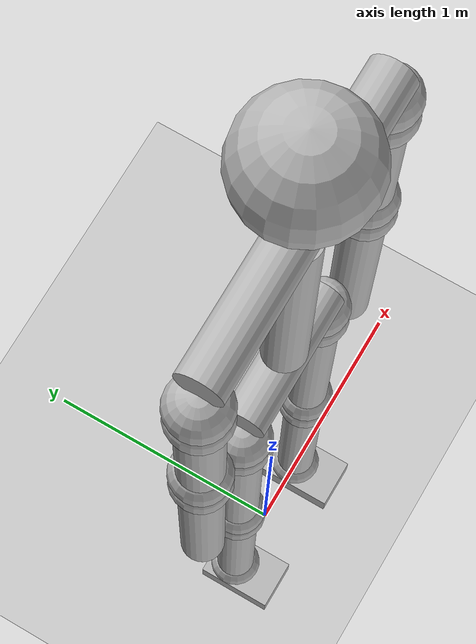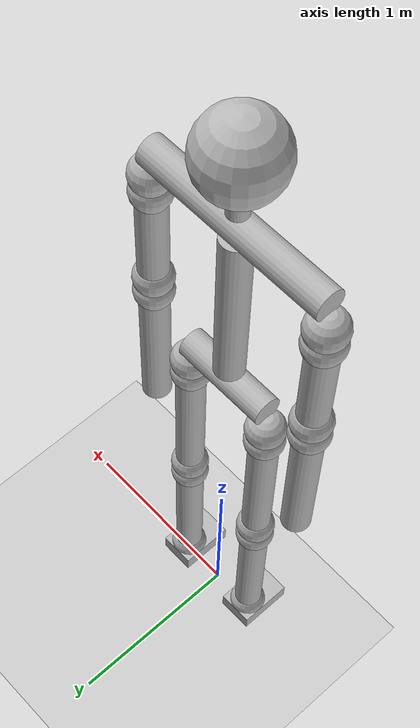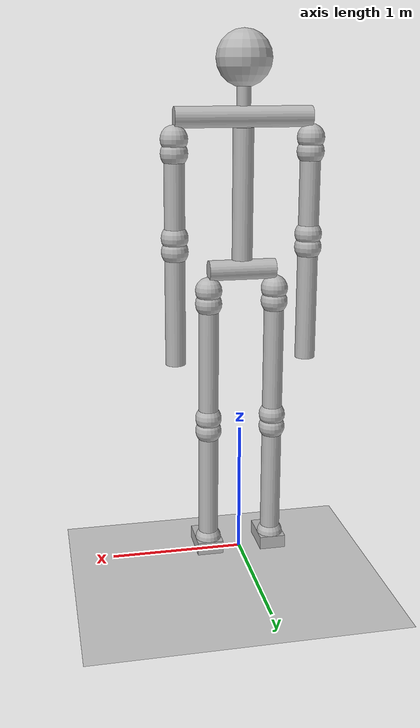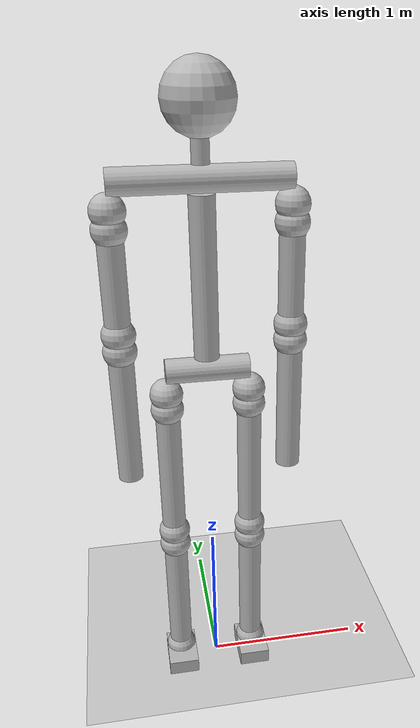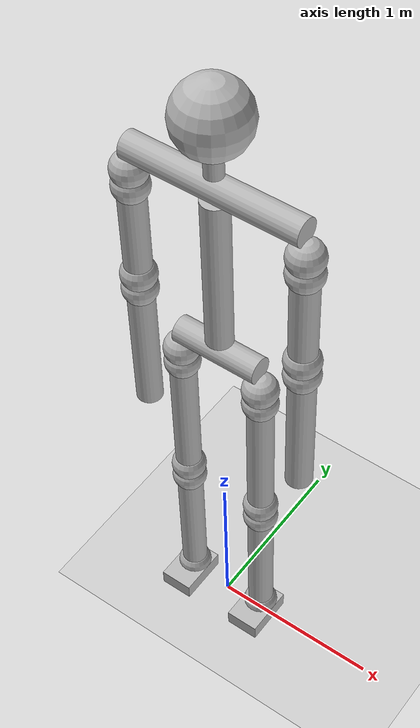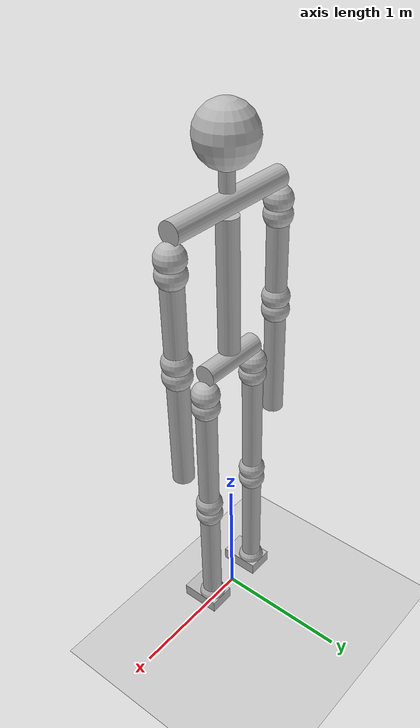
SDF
<?xml version="1.0" ?>
<sdf version="1.4">
     <world name="my_robot_world">
        <include>
            <uri>model://sun</uri>
        </include>
        <include>
            <uri>model://ground_plane</uri>
        </include>
        <include>
            <uri>model://my_robot</uri>
        </include>
     </world>
</sdf>

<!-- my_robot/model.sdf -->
<sdf version='1.4'>
	<model name="my_robot">
		<static>false</static>

    <joint type="fixed" name="joint_78">
      <child>link8</child>
      <parent>link7</parent>
    </joint>

    <joint type="fixed" name="joint_47">
      <child>link7</child>
      <parent>link4</parent>
    </joint>

    <link name='link8'>  <!-- head -->
      <inertial>
        <mass>0.4</mass>
      </inertial>
      <self_collide>1</self_collide>
      <pose>0 0 3.75 0 0 0</pose>
      <collision name='collision'>
        <geometry>
          <sphere>
            <radius>.01</radius>
          </sphere>
        </geometry>
      </collision>

      <visual name='visual'>
        <geometry>
          <sphere>
            <radius>.2</radius>
          </sphere>
        </geometry>
      </visual>
    </link>

    <link name='link7'>  <!-- neck -->
      <inertial>
        <mass>0.01875</mass>
      </inertial>
      <self_collide>1</self_collide>
      <pose>0 0 3.55 0 0 0</pose>
      <collision name='collision'>
        <geometry>
          <cylinder>
            <radius>.01</radius>
            <length>.2</length>
          </cylinder>
        </geometry>
      </collision>

      <visual name='visual'>
        <geometry>
          <cylinder>
            <radius>.05</radius>
            <length>.25</length>
          </cylinder>
        </geometry>
      </visual>
    </link>

    <link name='link6l'>  <!-- left lower arm -->
      <inertial>
        <mass>0.6</mass>
      </inertial>
      <self_collide>1</self_collide>
      <pose>-.5 0 1.95 0 0 0</pose>
      <collision name='collision'>
        <geometry>
          <cylinder>
            <radius>.01</radius>
            <length>.8</length>
          </cylinder>
        </geometry>
      </collision>

      <visual name='visual'>
        <geometry>
          <cylinder>
            <radius>.075</radius>
            <length>.8</length>
          </cylinder>
        </geometry>
      </visual>
    </link>

    <link name='link6r'>  <!-- right lower arm -->
      <inertial>
        <mass>0.6</mass>
      </inertial>
      <self_collide>1</self_collide>
      <pose>.5 0 1.95 0 0 0</pose>
      <collision name='collision'>
        <geometry>
          <cylinder>
            <radius>.01</radius>
            <length>.8</length>
          </cylinder>
        </geometry>
      </collision>

      <visual name='visual'>
        <geometry>
          <cylinder>
            <radius>.075</radius>
            <length>.8</length>
          </cylinder>
        </geometry>
      </visual>
    </link>

    <joint type="fixed" name="joint_link6lballjoint0">
      <child>link6lball0</child>
      <parent>link6l</parent>
    </joint>

    <joint type="fixed" name="joint_link6rballjoint0">
      <child>link6rball0</child>
      <parent>link6r</parent>
    </joint>

    <link name='link6lball0'>
      <inertial>
        <mass>0.1</mass>
      </inertial>
      <pose>-.5 0 2.4 0 0 0</pose>
      <collision name='collision'>
        <geometry>
          <sphere>
            <radius>.01</radius>
          </sphere>
        </geometry>
      </collision>

      <visual name='visual'>
        <geometry>
          <sphere>
            <radius>.1</radius>
          </sphere>
        </geometry>
      </visual>
    </link>

    <link name='link6rball0'>
      <inertial>
        <mass>0.1</mass>
      </inertial>
      <pose>.5 0 2.4 0 0 0</pose>
      <collision name='collision'>
        <geometry>
          <sphere>
            <radius>.01</radius>
          </sphere>
        </geometry>
      </collision>

      <visual name='visual'>
        <geometry>
          <sphere>
            <radius>.1</radius>
          </sphere>
        </geometry>
      </visual>
    </link>

    <joint type="revolute" name="joint_5l6l">
      <child>link6lball0</child>
      <parent>link5lball</parent>
      <axis>
        <xyz>1 0 0 </xyz>
        <limit>
          <lower>-3.14</lower>
          <upper>0</upper>
          <stiffness>25000</stiffness>
          <effort>100</effort>
        </limit>
        <dynamics>
          <friction>0.0001</friction>
        </dynamics>
      </axis>
    </joint>

    <joint type="revolute" name="joint_5r6r">
      <child>link6rball0</child>
      <parent>link5rball</parent>
      <axis>
        <xyz>1 0 0 </xyz>
        <limit>
          <lower>-3.14</lower>
          <upper>0</upper>
          <stiffness>25000</stiffness>
          <effort>100</effort>
        </limit>
        <dynamics>
          <friction>0.0001</friction>
        </dynamics>
      </axis>
    </joint>

    <joint type="fixed" name="joint_link5lballjoint">
      <child>link5lball</child>
      <parent>link5l</parent>
    </joint>

    <joint type="fixed" name="joint_link5rballjoint">
      <child>link5rball</child>
      <parent>link5r</parent>
    </joint>

    <link name='link5lball'>
      <inertial>
        <mass>0.1</mass>
      </inertial>
      <pose>-.5 0 2.5 0 0 0</pose>
      <collision name='collision'>
        <geometry>
          <sphere>
            <radius>.01</radius>
          </sphere>
        </geometry>
      </collision>

      <visual name='visual'>
        <geometry>
          <sphere>
            <radius>.1</radius>
          </sphere>
        </geometry>
      </visual>
    </link>

    <link name='link5rball'>
      <inertial>
        <mass>0.1</mass>
      </inertial>
      <pose>.5 0 2.5 0 0 0</pose>
      <collision name='collision'>
        <geometry>
          <sphere>
            <radius>.01</radius>
          </sphere>
        </geometry>
      </collision>

      <visual name='visual'>
        <geometry>
          <sphere>
            <radius>.1</radius>
          </sphere>
        </geometry>
      </visual>
    </link>

    <link name='link5l'>  <!-- left arm -->
      <inertial>
        <mass>0.375</mass>
      </inertial>
      <self_collide>1</self_collide>
      <pose>-.5 0 2.8 0 0 0</pose>
      <collision name='collision'>
        <geometry>
          <cylinder>
            <radius>.01</radius>
            <length>.5</length>
          </cylinder>
        </geometry>
      </collision>

      <visual name='visual'>
        <geometry>
          <cylinder>
            <radius>.075</radius>
            <length>.5</length>
          </cylinder>
        </geometry>
      </visual>
    </link>

    <link name='link5r'>  <!-- right arm -->
      <inertial>
        <mass>0.375</mass>
      </inertial>
      <self_collide>1</self_collide>
      <pose>.5 0 2.8 0 0 0</pose>
      <collision name='collision'>
        <geometry>
          <cylinder>
            <radius>.01</radius>
            <length>.5</length>
          </cylinder>
        </geometry>
      </collision>

      <visual name='visual'>
        <geometry>
          <cylinder>
            <radius>.075</radius>
            <length>.5</length>
          </cylinder>
        </geometry>
      </visual>
    </link>

    <joint type="fixed" name="joint_link5lballjoint0">
      <child>link5lball0</child>
      <parent>link5l</parent>
    </joint>

    <joint type="fixed" name="joint_link5rballjoint0">
      <child>link5rball0</child>
      <parent>link5r</parent>
    </joint>

    <link name='link5lball0'>
      <inertial>
        <mass>0.1</mass>
      </inertial>
      <pose>-.5 0 3.1 0 0 0</pose>
      <collision name='collision'>
        <geometry>
          <sphere>
            <radius>.01</radius>
          </sphere>
        </geometry>
      </collision>

      <visual name='visual'>
        <geometry>
          <sphere>
            <radius>.1</radius>
          </sphere>
        </geometry>
      </visual>
    </link>

    <link name='link5rball0'>
      <inertial>
        <mass>0.1</mass>
      </inertial>
      <pose>.5 0 3.1 0 0 0</pose>
      <collision name='collision'>
        <geometry>
          <sphere>
            <radius>.01</radius>
          </sphere>
        </geometry>
      </collision>

      <visual name='visual'>
        <geometry>
          <sphere>
            <radius>.1</radius>
          </sphere>
        </geometry>
      </visual>
    </link>

    <joint type="revolute" name="joint_45l">
      <child>link5lball0</child>
      <parent>link4lball</parent>
      <axis>
        <xyz>1 0 0 </xyz>
        <limit>
          <lower>-3.14</lower>
          <upper>0.79</upper>
          <stiffness>25000</stiffness>
          <effort>100</effort>
        </limit>
        <dynamics>
          <friction>0.0001</friction>
        </dynamics>
      </axis>
    </joint>

    <joint type="revolute" name="joint_45r">
      <child>link5rball0</child>
      <parent>link4rball</parent>
      <axis>
        <xyz>1 0 0 </xyz>
        <limit>
          <lower>-3.14</lower>
          <upper>0.79</upper>
          <stiffness>25000</stiffness>
          <effort>100</effort>
        </limit>
        <dynamics>
          <friction>0.0001</friction>
        </dynamics>
      </axis>
    </joint>

    <joint type="fixed" name="joint_34">
      <child>link4</child>
      <parent>link3</parent>
    </joint>

    <link name='link4lball'>
      <inertial>
        <mass>0.1</mass>
      </inertial>
      <pose>-.5 0 3.2 0 0 0</pose>
      <collision name='collision'>
        <geometry>
          <sphere>
            <radius>.01</radius>
          </sphere>
        </geometry>
      </collision>

      <visual name='visual'>
        <geometry>
          <sphere>
            <radius>.1</radius>
          </sphere>
        </geometry>
      </visual>
    </link>

    <link name='link4rball'>
      <inertial>
        <mass>0.1</mass>
      </inertial>
      <pose>.5 0 3.2 0 0 0</pose>
      <collision name='collision'>
        <geometry>
          <sphere>
            <radius>.01</radius>
          </sphere>
        </geometry>
      </collision>

      <visual name='visual'>
        <geometry>
          <sphere>
            <radius>.1</radius>
          </sphere>
        </geometry>
      </visual>
    </link>

    <joint type="fixed" name="joint_link4lballjoint">
      <child>link4lball</child>
      <parent>link4</parent>
    </joint>

    <joint type="fixed" name="joint_link4rballjoint">
      <child>link4rball</child>
      <parent>link4</parent>
    </joint>

    <link name='link4'>  <!-- shoulder -->
      <inertial>
        <mass>0.75</mass>
      </inertial>
      <self_collide>1</self_collide>
      <pose>0 0 3.35 0 1.57079632 0</pose>
      <collision name='collision'>
        <geometry>
          <cylinder>
            <radius>.01</radius>
            <length>1</length>
          </cylinder>
        </geometry>
      </collision>

      <visual name='visual'>
        <geometry>
          <cylinder>
            <radius>.075</radius>
            <length>1</length>
          </cylinder>
        </geometry>
      </visual>
    </link>

    <joint type="fixed" name="joint_03">
      <child>link3</child>
      <parent>link0</parent>
    </joint>

    <link name='link3'>  <!-- trunk -->
      <inertial>
        <mass>0.7125</mass>
      </inertial>
      <self_collide>1</self_collide>
      <pose>0 0 2.8 0 0 0</pose>
      <collision name='collision'>
        <geometry>
          <cylinder>
            <radius>.01</radius>
            <length>.95</length>
          </cylinder>
        </geometry>
      </collision>

      <visual name='visual'>
        <geometry>
          <cylinder>
            <radius>.075</radius>
            <length>.95</length>
          </cylinder>
        </geometry>
      </visual>
    </link>

    <link name='link0'>  <!-- root/pelvis -->
      <inertial>
        <mass>0.375</mass>
      </inertial>
      <self_collide>1</self_collide>
      <pose>0 0 2.25 0 1.57079632 0</pose>
      <collision name='collision'>
        <geometry>
          <cylinder>
            <radius>.01</radius>
            <length>.5</length>
          </cylinder>
        </geometry>
      </collision>

      <visual name='visual'>
        <geometry>
          <cylinder>
            <radius>.075</radius>
            <length>.5</length>
          </cylinder>
        </geometry>
      </visual>
    </link>

    <joint type="revolute" name="joint_01l">
      <child>link0lball</child>
      <parent>link1lball0</parent>
      <axis>
        <xyz>1 0 0 </xyz>
        <limit>
          <lower>0</lower>
          <upper>3.14</upper>
          <stiffness>25000</stiffness>
          <effort>100</effort>
        </limit>
        <dynamics>
          <friction>0.0001</friction>
        </dynamics>
      </axis>
    </joint>

    <joint type="revolute" name="joint_01r">
      <child>link0rball</child>
      <parent>link1rball0</parent>
      <axis>
        <xyz>1 0 0 </xyz>
        <limit>
          <lower>0</lower>
          <upper>3.14</upper>
          <stiffness>25000</stiffness>
          <effort>100</effort>
        </limit>
        <dynamics>
          <friction>0.0001</friction>
        </dynamics>
      </axis>
    </joint>

    <joint type="fixed" name="joint_link0lballjoint">
      <child>link0lball</child>
      <parent>link0</parent>
    </joint>

    <joint type="fixed" name="joint_link0rballjoint">
      <child>link0rball</child>
      <parent>link0</parent>
    </joint>

    <link name='link0lball'>
      <inertial>
        <mass>0.1</mass>
      </inertial>
      <pose>-.25 0 2.1 0 0 0</pose>
      <collision name='collision'>
        <geometry>
          <sphere>
            <radius>.01</radius>
          </sphere>
        </geometry>
      </collision>

      <visual name='visual'>
        <geometry>
          <sphere>
            <radius>.1</radius>
          </sphere>
        </geometry>
      </visual>
    </link>

    <link name='link0rball'>
      <inertial>
        <mass>0.1</mass>
      </inertial>
      <pose>.25 0 2.1 0 0 0</pose>
      <collision name='collision'>
        <geometry>
          <sphere>
            <radius>.01</radius>
          </sphere>
        </geometry>
      </collision>

      <visual name='visual'>
        <geometry>
          <sphere>
            <radius>.1</radius>
          </sphere>
        </geometry>
      </visual>
    </link>

    <link name='link1lball0'>
      <inertial>
        <mass>0.1</mass>
      </inertial>
      <pose>-.25 0 2 0 0 0</pose>
      <collision name='collision'>
        <geometry>
          <sphere>
            <radius>.01</radius>
          </sphere>
        </geometry>
      </collision>

      <visual name='visual'>
        <geometry>
          <sphere>
            <radius>.1</radius>
          </sphere>
        </geometry>
      </visual>
    </link>

    <link name='link1rball0'>
      <inertial>
        <mass>0.1</mass>
      </inertial>
      <pose>.25 0 2 0 0 0</pose>
      <collision name='collision'>
        <geometry>
          <sphere>
            <radius>.01</radius>
          </sphere>
        </geometry>
      </collision>

      <visual name='visual'>
        <geometry>
          <sphere>
            <radius>.1</radius>
          </sphere>
        </geometry>
      </visual>
    </link>

    <joint type="fixed" name="joint_link1lballjoint0">
      <child>link1lball0</child>
      <parent>link1l</parent>
    </joint>

    <joint type="fixed" name="joint_link1rballjoint0">
      <child>link1rball0</child>
      <parent>link1r</parent>
    </joint>

    <link name='link1l'>  <!-- left hip -->
      <inertial>
        <mass>0.6</mass>
      </inertial>
      <self_collide>1</self_collide>
      <pose>-.25 0 1.55 0 0 0</pose>
      <collision name='collision'>
        <geometry>
          <cylinder>
            <radius>.01</radius>
            <length>.8</length>
          </cylinder>
        </geometry>
      </collision>

      <visual name='visual'>
        <geometry>
          <cylinder>
            <radius>.075</radius>
            <length>.8</length>
          </cylinder>
        </geometry>
      </visual>
    </link>

    <link name='link1r'>  <!-- right hip -->
      <inertial>
        <mass>0.6</mass>
      </inertial>
      <self_collide>1</self_collide>
      <pose>.25 0 1.55 0 0 0</pose>
      <collision name='collision'>
        <geometry>
          <cylinder>
            <radius>.01</radius>
            <length>.8</length>
          </cylinder>
        </geometry>
      </collision>

      <visual name='visual'>
        <geometry>
          <cylinder>
            <radius>.075</radius>
            <length>.8</length>
          </cylinder>
        </geometry>
      </visual>
    </link>

    <joint type="fixed" name="joint_link1lballjoint">
      <child>link1lball</child>
      <parent>link1l</parent>
    </joint>

    <joint type="fixed" name="joint_link1rballjoint">
      <child>link1rball</child>
      <parent>link1r</parent>
    </joint>

    <link name='link1lball'>
      <inertial>
        <mass>0.1</mass>
      </inertial>
      <pose>-.25 0 1.1 0 0 0</pose>
      <collision name='collision'>
        <geometry>
          <sphere>
            <radius>.01</radius>
          </sphere>
        </geometry>
      </collision>

      <visual name='visual'>
        <geometry>
          <sphere>
            <radius>.1</radius>
          </sphere>
        </geometry>
      </visual>
    </link>

    <link name='link1rball'>
      <inertial>
        <mass>0.1</mass>
      </inertial>
      <pose>.25 0 1.1 0 0 0</pose>
      <collision name='collision'>
        <geometry>
          <sphere>
            <radius>.01</radius>
          </sphere>
        </geometry>
      </collision>

      <visual name='visual'>
        <geometry>
          <sphere>
            <radius>.1</radius>
          </sphere>
        </geometry>
      </visual>
    </link>

    <joint type="revolute" name="joint_1l2l">
      <child>link2lball0</child>
      <parent>link1lball</parent>
      <axis>
        <xyz>1 0 0 </xyz>
        <limit>
          <lower>0</lower>
          <upper>3.14</upper>
          <stiffness>25000</stiffness>
          <effort>100</effort>
        </limit>
        <dynamics>
          <friction>0.0001</friction>
        </dynamics>
      </axis>
    </joint>

    <joint type="revolute" name="joint_1r2r">
      <child>link2rball0</child>
      <parent>link1rball</parent>
      <axis>
        <xyz>1 0 0 </xyz>
        <limit>
          <lower>0</lower>
          <upper>3.14</upper>
          <stiffness>25000</stiffness>
          <effort>100</effort>
        </limit>
        <dynamics>
          <friction>0.0001</friction>
        </dynamics>
      </axis>
    </joint>

    <joint type="fixed" name="joint_link2lballjoint0">
      <child>link2lball0</child>
      <parent>link2l</parent>
    </joint>

    <joint type="fixed" name="joint_link2rballjoint0">
      <child>link2rball0</child>
      <parent>link2r</parent>
    </joint>

    <link name='link2lball0'>
      <inertial>
        <mass>0.1</mass>
      </inertial>
      <pose>-.25 0 1 0 0 0</pose>
      <collision name='collision'>
        <geometry>
          <sphere>
            <radius>.01</radius>
          </sphere>
        </geometry>
      </collision>

      <visual name='visual'>
        <geometry>
          <sphere>
            <radius>.1</radius>
          </sphere>
        </geometry>
      </visual>
    </link>

    <link name='link2rball0'>
      <inertial>
        <mass>0.1</mass>
      </inertial>
      <pose>.25 0 1 0 0 0</pose>
      <collision name='collision'>
        <geometry>
          <sphere>
            <radius>.01</radius>
          </sphere>
        </geometry>
      </collision>

      <visual name='visual'>
        <geometry>
          <sphere>
            <radius>.1</radius>
          </sphere>
        </geometry>
      </visual>
    </link>

    <link name='link2l'>  <!-- left lower leg -->
      <inertial>
        <mass>0.6</mass>
      </inertial>
      <pose>-.25 0 .5 0 0 0</pose>
      <collision name='collision'>
        <geometry>
          <cylinder>
            <radius>.01</radius>
            <length>.9</length>
          </cylinder>
        </geometry>
      </collision>

      <visual name='visual'>
        <geometry>
          <cylinder>
            <radius>.075</radius>
            <length>.9</length>
          </cylinder>
        </geometry>
      </visual>
    </link>

    <link name='link2r'>  <!-- right lower leg -->
      <inertial>
        <mass>0.6</mass>
      </inertial>
      <pose>.25 0 .5 0 0 0</pose>
      <collision name='collision'>
        <geometry>
          <cylinder>
            <radius>.01</radius>
            <length>.9</length>
          </cylinder>
        </geometry>
      </collision>

      <visual name='visual'>
        <geometry>
          <cylinder>
            <radius>.075</radius>
            <length>.9</length>
          </cylinder>
        </geometry>
      </visual>
    </link>

    <joint type="fixed" name="joint_link2lballjoint">
      <child>link2lball</child>
      <parent>link2l</parent>
    </joint>

    <joint type="fixed" name="joint_link2rballjoint">
      <child>link2rball</child>
      <parent>link2r</parent>
    </joint>

    <link name='link2lball'>
      <inertial>
        <mass>0.1</mass>
      </inertial>
      <pose>-.25 0 .1 0 0 0</pose>
      <collision name='collision'>
        <geometry>
          <sphere>
            <radius>.01</radius>
          </sphere>
        </geometry>
      </collision>

      <visual name='visual'>
        <geometry>
          <sphere>
            <radius>.1</radius>
          </sphere>
        </geometry>
      </visual>
    </link>

    <link name='link2rball'>
      <inertial>
        <mass>0.1</mass>
      </inertial>
      <pose>.25 0 .1 0 0 0</pose>
      <collision name='collision'>
        <geometry>
          <sphere>
            <radius>.01</radius>
          </sphere>
        </geometry>
      </collision>

      <visual name='visual'>
        <geometry>
          <sphere>
            <radius>.1</radius>
          </sphere>
        </geometry>
      </visual>
    </link>

    <joint type="revolute" name="joint_2l9l">
      <child>link9lball0</child>
      <parent>link2lball</parent>
      <axis>
        <xyz>1 0 0 </xyz>
        <limit>
          <lower>-0.79</lower>
          <upper>0.79</upper>
          <stiffness>25000</stiffness>
          <effort>100</effort>
        </limit>
        <dynamics>
          <friction>0.0001</friction>
        </dynamics>
      </axis>
    </joint>

    <joint type="revolute" name="joint_2r9r">
      <child>link9rball0</child>
      <parent>link2rball</parent>
      <axis>
        <xyz>1 0 0 </xyz>
        <limit>
          <lower>-0.79</lower>
          <upper>0.79</upper>
          <stiffness>25000</stiffness>
          <effort>100</effort>
        </limit>
        <dynamics>
          <friction>0.0001</friction>
        </dynamics>
      </axis>
    </joint>

    <joint type="fixed" name="joint_link9lballjoint0">
      <child>link9lball0</child>
      <parent>link9l</parent>
    </joint>

    <joint type="fixed" name="joint_link9rballjoint0">
      <child>link9rball0</child>
      <parent>link9r</parent>
    </joint>

    <link name='link9lball0'>
      <inertial>
        <mass>0.0125</mass>
      </inertial>
      <pose>-.25 0 .05 0 0 0</pose>
      <collision name='collision'>
        <geometry>
          <sphere>
            <radius>.05</radius>
          </sphere>
        </geometry>
      </collision>

      <visual name='visual'>
        <geometry>
          <sphere>
            <radius>.05</radius>
          </sphere>
        </geometry>
      </visual>
    </link>

    <link name='link9rball0'>
      <inertial>
        <mass>0.0125</mass>
      </inertial>
      <pose>.25 0 .05 0 0 0</pose>
      <collision name='collision'>
        <geometry>
          <sphere>
            <radius>.05</radius>
          </sphere>
        </geometry>
      </collision>

      <visual name='visual'>
        <geometry>
          <sphere>
            <radius>.05</radius>
          </sphere>
        </geometry>
      </visual>
    </link>

    <link name='link9l'>  <!-- left foot -->
      <inertial>
        <mass>0.1432</mass>
      </inertial>
      <collision name='collision'>
        <pose>-.25 -.1 0.05 0 0 0</pose>
        <geometry>
          <box>
            <size>.2 .2 .1</size>
          </box>
        </geometry>
      </collision>

      <visual name='visual'>
        <pose>-.25 -.05 0.05 0 0 0</pose>
        <geometry>
          <box>
            <size>.2 .3 .1</size>
          </box>
        </geometry>
      </visual>
    </link>

    <link name='link9r'>  <!-- right foot -->
      <inertial>
        <mass>0.1432</mass>
      </inertial>
      <collision name='collision'>
        <pose>.25 -.1 0.05 0 0 0</pose>
        <geometry>
          <box>
            <size>.2 .2 .1</size>
          </box>
        </geometry>
      </collision>

      <visual name='visual'>
        <pose>.25 -.05 0.05 0 0 0</pose>
        <geometry>
          <box>
            <size>.2 .3 .1</size>
          </box>
        </geometry>
      </visual>
    </link>

	</model>
</sdf>
